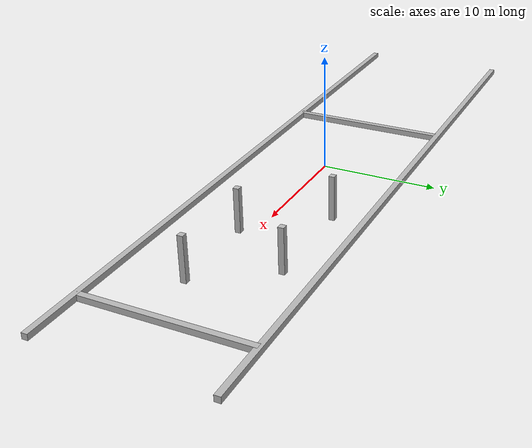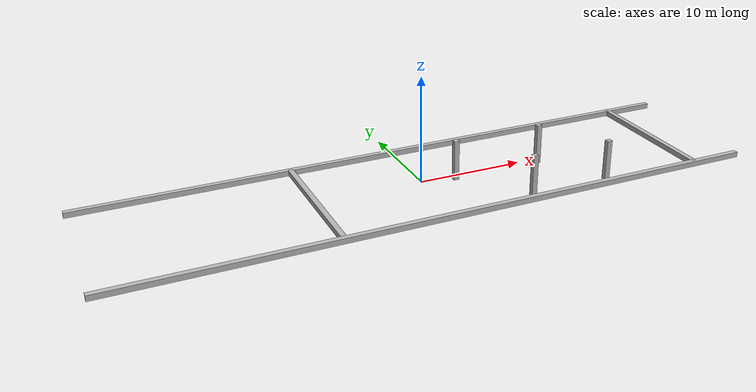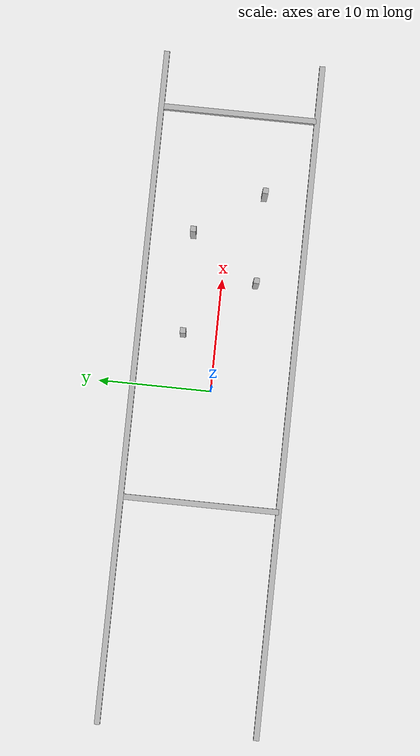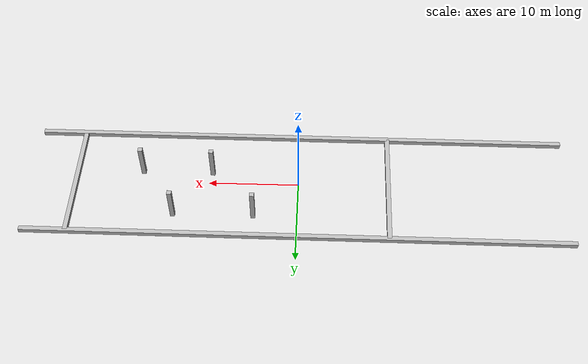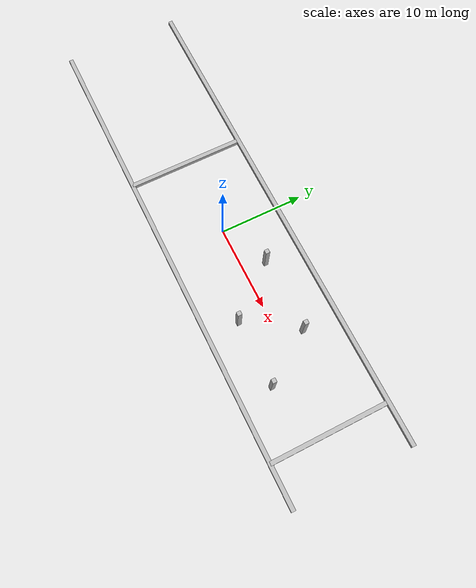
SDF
<?xml version="1.0" ?>
<sdf version="1.4">
  <world name="underwater">
    <include>
      <uri>model://sun</uri>
    </include>

    <wind>
      <linear_velocity>11 11 0</linear_velocity> <!-- Wind linear velocity -->
    </wind>
    <model name="model">
      <link name="link">
        <wind>true</wind>
      </link>
  </model>

    <model name='barco_obs2'>
        <static>true</static>
        <link name='base_link2'>
          <pose frame=''>5 3 0 0 0 0</pose>
          <inertial>
            <pose frame=''>0 0 0 0 0 0</pose>
            <mass>10</mass>
            <inertia>
              <ixx>3</ixx>
              <ixy>0</ixy>
              <ixz>0</ixz>
              <iyy>1</iyy>
              <iyz>0</iyz>
              <izz>3</izz>
            </inertia>
          </inertial>
          <collision name='base_link_collision2'>
            <pose frame=''>0 0 0 1.5708 1.5708 1.5708</pose>
            <geometry>
              <box>
                <size>3 0.5 0.5</size>
              </box>
            </geometry>
          </collision>
          <visual name='base_link_visual2'>
            <pose frame=''>0 0 0 1.5708 1.5708 1.5708</pose>
            <geometry>
              <box>
                <size>4 0.5 0.5</size>
              </box>
            </geometry>
          </visual>
        </link>
    </model>

    <model name='barco_obs'>
        <static>true</static>
        <link name='base_link'>
          <pose frame=''>10 -3 0 0 0 0</pose>
          <inertial>
            <pose frame=''>0 0 0 0 0 0</pose>
            <mass>10</mass>
            <inertia>
              <ixx>3</ixx>
              <ixy>0</ixy>
              <ixz>0</ixz>
              <iyy>1</iyy>
              <iyz>0</iyz>
              <izz>3</izz>
            </inertia>
          </inertial>
          <collision name='base_link_collision'>
            <pose frame=''>0 0 0 1.5708 1.5708 1.5708</pose>
            <geometry>
              <box>
                <size>3 0.5 0.5</size>
              </box>
            </geometry>
          </collision>
          <visual name='base_link_visual'>
            <pose frame=''>0 0 0 1.5708 1.5708 1.5708</pose>
            <geometry>
              <box>
                <size>4 0.5 0.5</size>
              </box>
            </geometry>
          </visual>
        </link>
    </model>

  <model name='barco_obs3'>
        <static>true</static>
        <link name='base_link3'>
          <pose frame=''>14 3 0 0 0 0</pose>
          <inertial>
            <pose frame=''>0 0 0 0 0 0</pose>
            <mass>10</mass>
            <inertia>
              <ixx>3</ixx>
              <ixy>0</ixy>
              <ixz>0</ixz>
              <iyy>1</iyy>
              <iyz>0</iyz>
              <izz>3</izz>
            </inertia>
          </inertial>
          <collision name='base_link_collision3'>
            <pose frame=''>0 0 0 1.5708 1.5708 1.5708</pose>
            <geometry>
              <box>
                <size>3 0.5 0.5</size>
              </box>
            </geometry>
          </collision>
          <visual name='base_link_visual3'>
            <pose frame=''>0 0 0 1.5708 1.5708 1.5708</pose>
            <geometry>
              <box>
                <size>4 0.5 0.5</size>
              </box>
            </geometry>
          </visual>
        </link>
    </model>

    <model name='barco_obs4'>
        <static>true</static>
        <link name='base_link4'>
          <pose frame=''>18 -3 0 0 0 0</pose>
          <inertial>
            <pose frame=''>0 0 0 0 0 0</pose>
            <mass>10</mass>
            <inertia>
              <ixx>3</ixx>
              <ixy>0</ixy>
              <ixz>0</ixz>
              <iyy>1</iyy>
              <iyz>0</iyz>
              <izz>3</izz>
            </inertia>
          </inertial>
          <collision name='base_link_collision4'>
            <pose frame=''>0 0 0 1.5708 1.5708 1.5708</pose>
            <geometry>
              <box>
                <size>3 0.5 0.5</size>
              </box>
            </geometry>
          </collision>
          <visual name='base_link_visual4'>
            <pose frame=''>0 0 0 1.5708 1.5708 1.5708</pose>
            <geometry>
              <box>
                <size>4 0.5 0.5</size>
              </box>
            </geometry>
          </visual>
        </link>
    </model>

    <model name='barco_obs5'>
        <static>true</static>
        <link name='base_link5'>
          <pose frame=''>0 -7 0 0 0 0</pose>
          <inertial>
            <pose frame=''>0 0 0 0 0 0</pose>
            <mass>10</mass>
            <inertia>
              <ixx>3</ixx>
              <ixy>0</ixy>
              <ixz>0</ixz>
              <iyy>1</iyy>
              <iyz>0</iyz>
              <izz>3</izz>
            </inertia>
          </inertial>
          <collision name='base_link_collision5'>
            <pose frame=''>0 0 0 1.5708 0 0</pose>
            <geometry>
              <box>
                <size>60 0.5 0.5</size>
              </box>
            </geometry>
          </collision>
          <visual name='base_link_visual5'>
            <pose frame=''>0 0 0 1.5708 0 0</pose>
            <geometry>
              <box>
                <size>60 0.5 0.5</size>
              </box>
            </geometry>
          </visual>
        </link>
    </model>

    <model name='barco_obs6'>
        <static>true</static>
        <link name='base_link6'>
          <pose frame=''>0 7 0 0 0 0</pose>
          <inertial>
            <pose frame=''>0 0 0 0 0 0</pose>
            <mass>10</mass>
            <inertia>
              <ixx>3</ixx>
              <ixy>0</ixy>
              <ixz>0</ixz>
              <iyy>1</iyy>
              <iyz>0</iyz>
              <izz>3</izz>
            </inertia>
          </inertial>
          <collision name='base_link_collision6'>
            <pose frame=''>0 0 0 1.5708 0 0</pose>
            <geometry>
              <box>
                <size>60 0.5 0.5</size>
              </box>
            </geometry>
          </collision>
          <visual name='base_link_visual6'>
            <pose frame=''>0 0 0 1.5708 0 0</pose>
            <geometry>
              <box>
                <size>60 0.5 0.5</size>
              </box>
            </geometry>
          </visual>
        </link>
    </model>

    <model name='barco_obs7'>
        <static>true</static>
        <link name='base_link7'>
          <pose frame=''>25 0 0 0 0 0</pose>
          <inertial>
            <pose frame=''>0 0 0 0 0 0</pose>
            <mass>10</mass>
            <inertia>
              <ixx>3</ixx>
              <ixy>0</ixy>
              <ixz>0</ixz>
              <iyy>1</iyy>
              <iyz>0</iyz>
              <izz>3</izz>
            </inertia>
          </inertial>
          <collision name='base_link_collision7'>
            <pose frame=''>0 0 0 1.5708 0 1.5708</pose>
            <geometry>
              <box>
                <size>14 0.5 0.5</size>
              </box>
            </geometry>
          </collision>
          <visual name='base_link_visual7'>
            <pose frame=''>0 0 0 1.5708 0 1.5708</pose>
            <geometry>
              <box>
                <size>14 0.5 0.5</size>
              </box>
            </geometry>
          </visual>
        </link>
    </model>

    <model name='barco_obs8'>
        <static>true</static>
        <link name='base_link8'>
          <pose frame=''>-10 0 0 0 0 0</pose>
          <inertial>
            <pose frame=''>0 0 0 0 0 0</pose>
            <mass>10</mass>
            <inertia>
              <ixx>3</ixx>
              <ixy>0</ixy>
              <ixz>0</ixz>
              <iyy>1</iyy>
              <iyz>0</iyz>
              <izz>3</izz>
            </inertia>
          </inertial>
          <collision name='base_link_collision8'>
            <pose frame=''>0 0 0 1.5708 0 1.5708</pose>
            <geometry>
              <box>
                <size>14 0.5 0.5</size>
              </box>
            </geometry>
          </collision>
          <visual name='base_link_visual8'>
            <pose frame=''>0 0 0 1.5708 0 1.5708</pose>
            <geometry>
              <box>
                <size>14 0.5 0.5</size>
              </box>
            </geometry>
          </visual>
        </link>
    </model>

    <!-- buoyancy plugin -->
    <plugin name="freefloating_gazebo_fluid" filename="libfreefloating_gazebo_fluid.so">
              <descriptionParam>robot_description</descriptionParam>
              <fluidTopic>current</fluidTopic>
              <alwaysOn>true</alwaysOn>
              <surface>0 0 0</surface>
              <updateRate>.001</updateRate>
    </plugin>
  </world>
</sdf>
